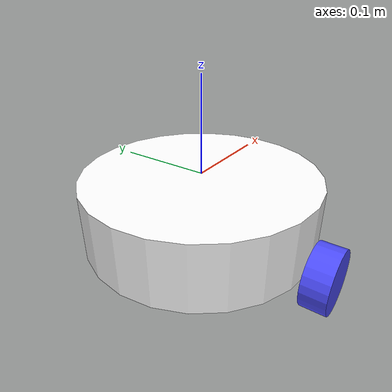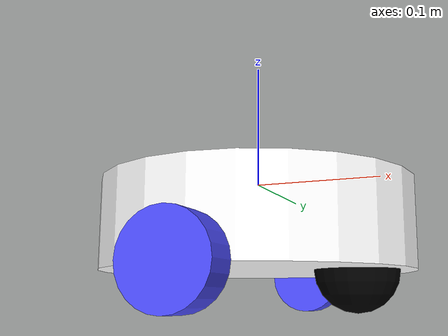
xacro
<?xml version="1.0"?>
<robot xmlns:xacro="http://www.ros.org/wiki/xacro">

    <xacro:include filename="inertial_macros.xacro" />

    <material name="white">
        <color rgba="1 1 1 1" />
    </material>

    <material name="orange">
        <color rgba="1 0.3 0.1 1" />
    </material>

    <material name="blue">
        <color rgba="0.3 0.3 1 1" />
    </material>

    <material name="black">
        <color rgba="0 0 0 1" />
    </material>

    <material name="red">
        <color rgba="1 0 0 1" />
    </material>

    <!-- base link -->
    <link name="base_link">

    </link>

    <!-- Base foot print -->
    <joint name="base_footprint_joint" type="fixed">
        <parent link="base_link" />
        <child link="base_footprint" />
        <origin xyz="0 0 0" rpy="0 0 0" />
    </joint>

    <link name="base_footprint">

    </link>

    <!-- Chassis -->
    <joint name="chassis_joint" type="fixed">
        <parent link="base_link" />
        <child link="chassis" />
        <origin xyz="0 0 -0.07" />
    </joint>

    <link name="chassis">
        <visual>
            <origin xyz="0 0 0.035" />
            <geometry>
                <cylinder radius="0.125" length="0.07" />
            </geometry>
            <material name="white" />
        </visual>

        <collision>
            <origin xyz="0 0 0.035" />
            <geometry>
                <cylinder radius="0.125" length="0.07" />
            </geometry>
        </collision>

        <xacro:inertial_cylinder mass="0.5" radius="0.125" length="0.07">
            <origin xyz="0.0 0.0 0.035" rpy="0.0 0.0 0.0" />

        </xacro:inertial_cylinder>
    </link>

    <gazebo reference="chassis">
        <material>Gazebo/White</material>
    </gazebo>

    <!-- left wheel -->
    <joint name="left_wheel_joint" type="continuous">
        <parent link="base_link" />
        <child link="left_wheel" />
        <origin xyz="0.0 0.14 -0.07" rpy="-${pi/2} 0.0 0.0" />
        <axis xyz="0.0 0.0 1" />

    </joint>

    <link name="left_wheel">
        <visual>
            <origin xyz="0 0 0" />
            <geometry>
                <cylinder radius="0.0325" length="0.026" />
            </geometry>
            <material name="blue" />
        </visual>

        <collision>
            <origin xyz="0 0 0" />
            <geometry>
                <sphere radius="0.0325" />
            </geometry>
        </collision>

        <xacro:inertial_cylinder mass="0.1" radius="0.0325" length="0.026">
            <origin xyz="0.0 0.0 0.0" rpy="0.0 0.0 0.0" />

        </xacro:inertial_cylinder>
    </link>

    <gazebo reference="left_wheel">
        <material>Gazebo/Blue</material>
    </gazebo>

    <!-- right wheel -->
    <joint name="right_wheel_joint" type="continuous">
        <parent link="base_link" />
        <child link="right_wheel" />
        <origin xyz="0.0 -0.14 -0.07" rpy="${pi/2} 0.0 0.0" />
        <axis xyz="0.0 0.0 -1" />

    </joint>

    <link name="right_wheel">
        <visual>
            <origin xyz="0 0 0" />
            <geometry>
                <cylinder radius="0.0325" length="0.026" />
            </geometry>
            <material name="blue" />
        </visual>

        <collision>
            <origin xyz="0 0 0" />
            <geometry>
                <sphere radius="0.0325" />
            </geometry>
        </collision>

        <xacro:inertial_cylinder mass="0.1" radius="0.0325" length="0.026">
            <origin xyz="0.0 0.0 0.0" rpy="0.0 0.0 0.0" />

        </xacro:inertial_cylinder>
    </link>

    <gazebo reference="right_wheel">
        <material>Gazebo/Blue</material>
    </gazebo>
    <!-- front Castor wheel -->
    <joint name="front_castor_wheel_joint" type="fixed">
        <parent link="chassis" />
        <child link="front_castor_wheel" />
        <origin xyz="0.08 0.0 0.0" rpy="0.0 0.0 0.0" />
    </joint>

    <link name="front_castor_wheel">
        <visual>
            <origin xyz="0 0 0" />
            <geometry>
                <sphere radius="0.0325" />
            </geometry>
            <material name="black" />
        </visual>

        <collision>
            <origin xyz="0 0 0" />
            <geometry>
                <sphere radius="0.0325" />
            </geometry>
        </collision>

        <xacro:inertial_sphere mass="0.1" radius="0.0325">
            <origin xyz="0.0 0.0 0.0" rpy="0.0 0.0 0.0" />

        </xacro:inertial_sphere>

    </link>

    <gazebo reference="front_castor_wheel">
        <material>Gazebo/Black</material>
        <mu1 value="0.001" />
        <mu2 value="0.001" />
    </gazebo>

    <!-- back Castor wheel -->
    <joint name="back_castor_wheel_joint" type="fixed">
        <parent link="chassis" />
        <child link="back_castor_wheel" />
        <origin xyz="-0.08 0.0 0.0" rpy="0.0 0.0 0.0" />
    </joint>

    <link name="back_castor_wheel">
        <visual>
            <origin xyz="0 0 0" />
            <geometry>
                <sphere radius="0.0325" />
            </geometry>
            <material name="black" />
        </visual>

        <collision>
            <origin xyz="0 0 0" />
            <geometry>
                <sphere radius="0.0325" />
            </geometry>
        </collision>

        <xacro:inertial_sphere mass="0.1" radius="0.0325">
            <origin xyz="0.0 0.0 0.0" rpy="0.0 0.0 0.0" />

        </xacro:inertial_sphere>
    </link>

    <gazebo reference="back_castor_wheel">
        <material>Gazebo/Black</material>
        <mu1 value="0.001" />
        <mu2 value="0.001" />
    </gazebo>

</robot>

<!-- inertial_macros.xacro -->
<robot xmlns:xacro="http://www.ros.org/wiki/xacro">

    <!-- Specify some standard inertial calculations
    https://en.wikipedia.org/wiki/List_of_moments_of_inertia -->
    <!-- These make use of xacro's mathematical functionality -->

    <xacro:macro name="inertial_sphere"
        params="mass radius *origin">
        <inertial>
            <xacro:insert_block name="origin" />
            <mass value="${mass}" />
            <inertia ixx="${(2/5) * mass * (radius*radius)}" ixy="0.0" ixz="0.0"
                iyy="${(2/5) * mass * (radius*radius)}" iyz="0.0"
                izz="${(2/5) * mass * (radius*radius)}" />
        </inertial>
    </xacro:macro>

    <xacro:macro
        name="inertial_box" params="mass x y z *origin">
        <inertial>
            <xacro:insert_block name="origin" />
            <mass value="${mass}" />
            <inertia ixx="${(1/12) * mass * (y*y+z*z)}" ixy="0.0" ixz="0.0"
                iyy="${(1/12) * mass * (x*x+z*z)}" iyz="0.0"
                izz="${(1/12) * mass * (x*x+y*y)}" />
        </inertial>
    </xacro:macro>

    <xacro:macro
        name="inertial_cylinder" params="mass length radius *origin">
        <inertial>
            <xacro:insert_block name="origin" />
            <mass value="${mass}" />
            <inertia ixx="${(1/12) * mass * (3*radius*radius + length*length)}" ixy="0.0" ixz="0.0"
                iyy="${(1/12) * mass * (3*radius*radius + length*length)}" iyz="0.0"
                izz="${(1/2) * mass * (radius*radius)}" />
        </inertial>
    </xacro:macro>
</robot>
